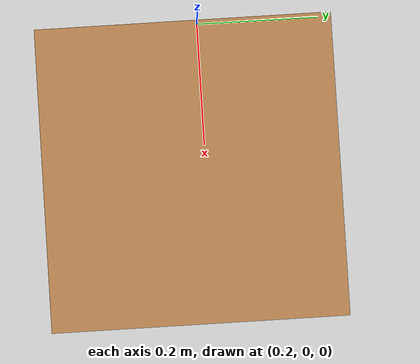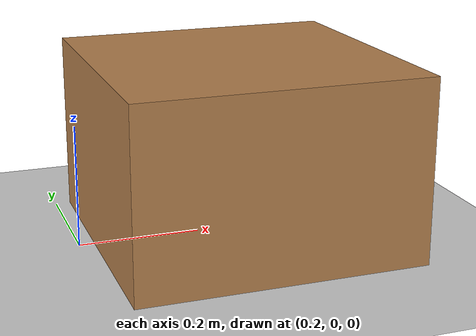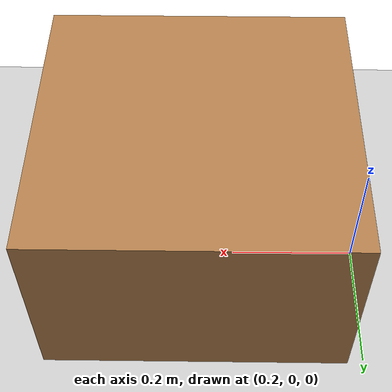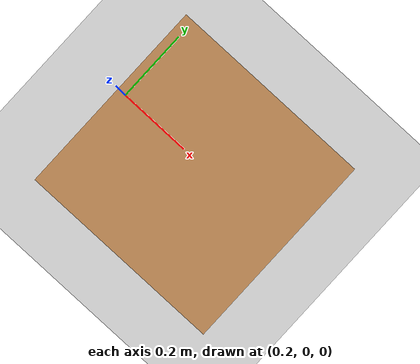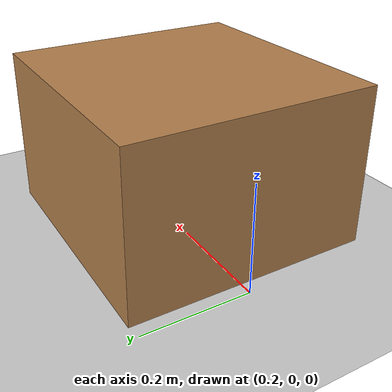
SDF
<sdf version="1.6">
 <world name="default">
  <light name="sun" type="directional">
   <pose>0 0 10 0 -0 0</pose>
   <diffuse>0.8 0.8 0.8 1</diffuse>
   <specular>0.2 0.2 0.2 1</specular>
   <attenuation>
    <range>1000</range>
    <constant>0.9</constant>
    <linear>0.01</linear>
    <quadratic>0.001</quadratic>
   </attenuation>
   <direction>-0.5 0.1 -0.9</direction>
  </light>
  <model name="ground_plane">
   <static>1</static>
   <link name="link">
    <collision name="collision">
     <geometry><plane><normal>0 0 1</normal><size>100 100</size></plane></geometry>
     <surface>
      <contact><collide_bitmask>65535</collide_bitmask></contact>
      <friction><ode><mu>100</mu><mu2>50</mu2></ode></friction>
     </surface>
    </collision>
    <visual name="visual">
     <cast_shadows>0</cast_shadows>
     <geometry><plane><normal>0 0 1</normal><size>100 100</size></plane></geometry>
     <material>
      <script><uri>file://media/materials/scripts/gazebo.material</uri><name>Gazebo/Grey</name></script>
     </material>
    </visual>
   </link>
  </model>
  <gravity>0 0 -9.8</gravity>
  <magnetic_field>6e-06 2.3e-05 -4.2e-05</magnetic_field>
  <atmosphere type="adiabatic"/>
  <physics name="default_physics" default="0" type="ode">
   <max_step_size>0.001</max_step_size>
   <real_time_factor>1</real_time_factor>
   <real_time_update_rate>1000</real_time_update_rate>
  </physics>
  <scene><ambient>0.4 0.4 0.4 1</ambient><background>0.7 0.7 0.7 1</background><shadows>1</shadows></scene>
  <audio><device>default</device></audio>
  <spherical_coordinates>
   <surface_model>EARTH_WGS84</surface_model>
   <latitude_deg>0</latitude_deg>
   <longitude_deg>0</longitude_deg>
   <elevation>0</elevation>
   <heading_deg>0</heading_deg>
  </spherical_coordinates>
  <model name="table">
   <link name="my_box">
    <inertial>
     <pose>0 0 0.0145 0 -0 0</pose>
     <mass>0.1</mass>
     <inertia><ixx>0.0001</ixx><ixy>0</ixy><ixz>0</ixz><iyy>0.0001</iyy><iyz>0</iyz><izz>0.0001</izz></inertia>
    </inertial>
    <collision name="my_box_collision">
     <pose>-0.23 0 0.215 0 -0 0</pose>
     <geometry><box><size>0.47 0.46 0.3</size></box></geometry>
    </collision>
    <visual name="my_box_visual">
     <pose>-0.23 0 0.215 0 -0 0</pose>
     <geometry><box><size>0.47 0.46 0.3</size></box></geometry>
     <material>
      <script><name>Gazebo/Wood</name><uri>file://media/materials/scripts/gazebo.material</uri></script>
     </material>
    </visual>
   </link>
   <static>1</static>
   <pose>0.69 -0.025 -0.065182 0 -0 0</pose>
  </model>
 </world>
</sdf>
